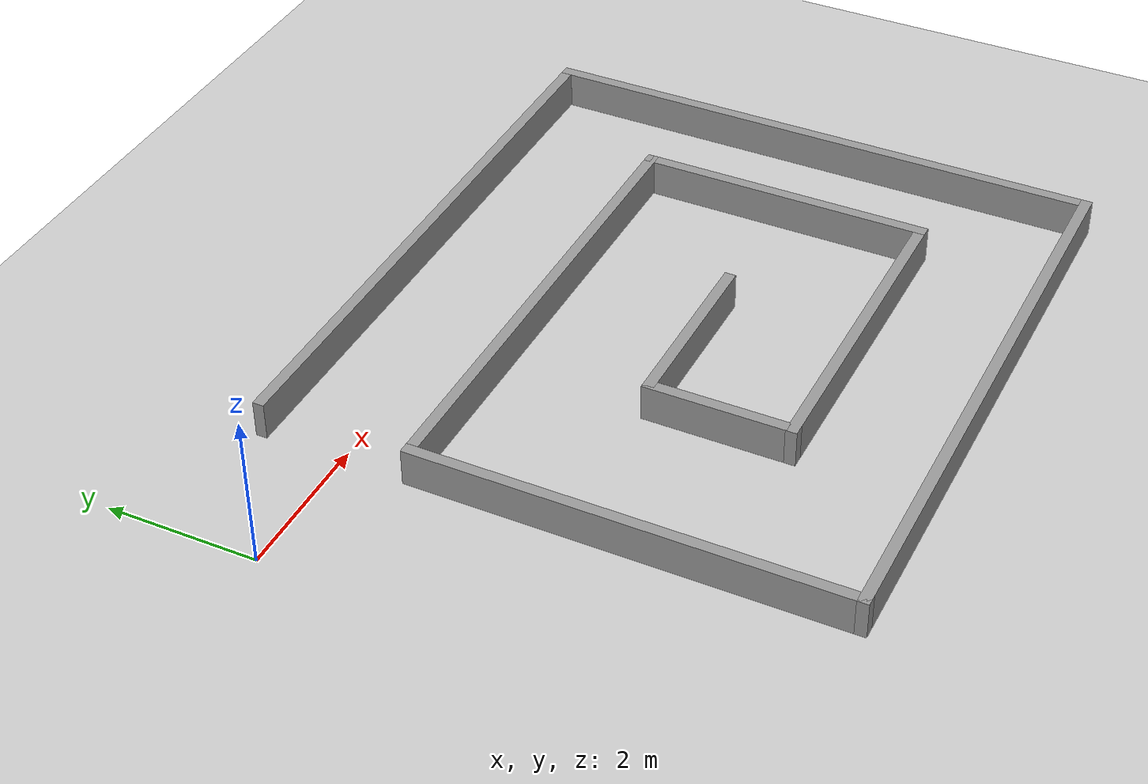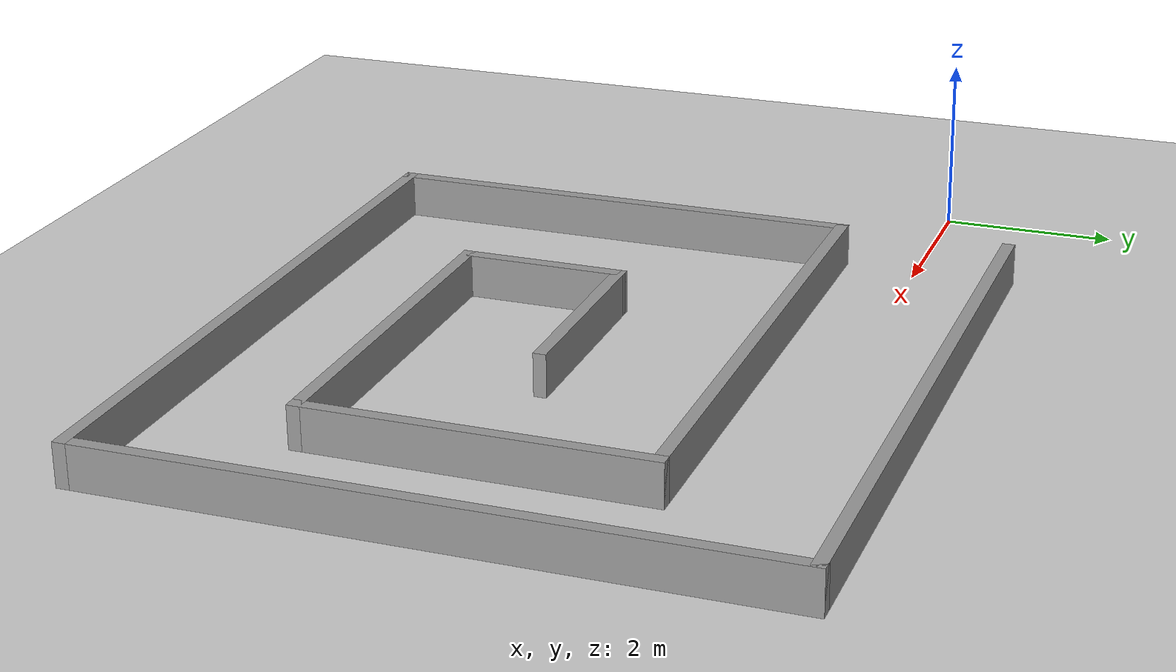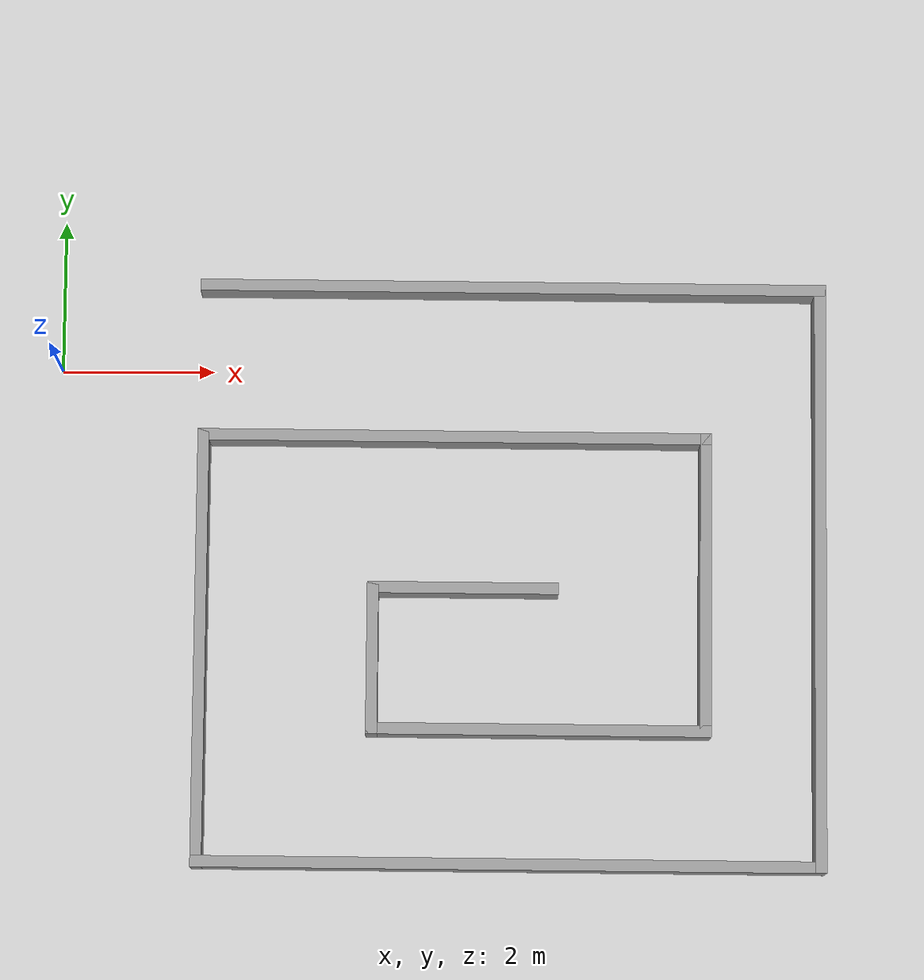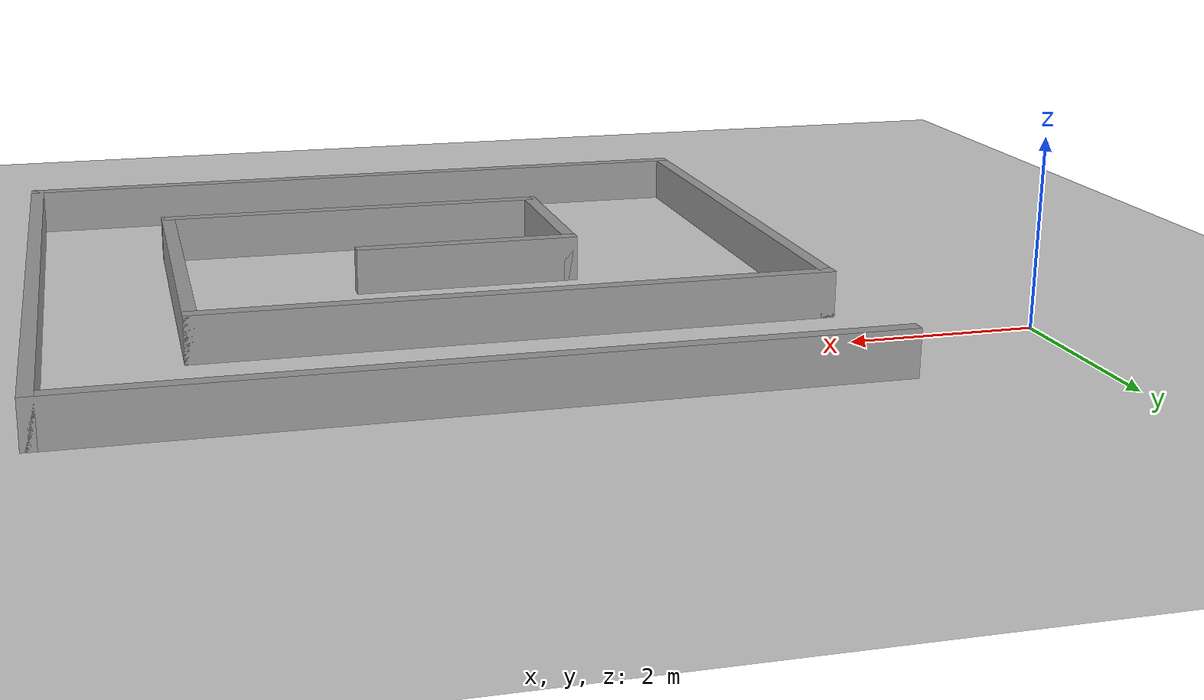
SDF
<sdf version="1.6">
 <world name="default">
  <light name="sun" type="directional">
   <pose>0 0 10 0 -0 0</pose>
   <diffuse>0.8 0.8 0.8 1</diffuse>
   <specular>0.2 0.2 0.2 1</specular>
   <attenuation>
    <range>1000</range>
    <constant>0.9</constant>
    <linear>0.01</linear>
    <quadratic>0.001</quadratic>
   </attenuation>
   <direction>-0.5 0.1 -0.9</direction>
  </light>
  <model name="ground_plane">
   <static>1</static>
   <link name="link">
    <collision name="collision">
     <geometry><plane><normal>0 0 1</normal><size>100 100</size></plane></geometry>
     <surface>
      <contact><collide_bitmask>65535</collide_bitmask></contact>
      <friction><ode><mu>100</mu><mu2>50</mu2></ode></friction>
     </surface>
    </collision>
    <visual name="visual">
     <cast_shadows>0</cast_shadows>
     <geometry><plane><normal>0 0 1</normal><size>100 100</size></plane></geometry>
     <material>
      <script><uri>file://media/materials/scripts/gazebo.material</uri><name>Gazebo/Grey</name></script>
     </material>
    </visual>
   </link>
  </model>
  <gravity>0 0 -9.8</gravity>
  <magnetic_field>6e-06 2.3e-05 -4.2e-05</magnetic_field>
  <atmosphere type="adiabatic"/>
  <physics name="default_physics" default="0" type="ode">
   <max_step_size>0.001</max_step_size>
   <real_time_factor>1</real_time_factor>
   <real_time_update_rate>1000</real_time_update_rate>
  </physics>
  <scene><ambient>0.4 0.4 0.4 1</ambient><background>0.7 0.7 0.7 1</background><shadows>1</shadows></scene>
  <audio><device>default</device></audio>
  <spherical_coordinates>
   <surface_model>EARTH_WGS84</surface_model>
   <latitude_deg>0</latitude_deg>
   <longitude_deg>0</longitude_deg>
   <elevation>0</elevation>
   <heading_deg>0</heading_deg>
  </spherical_coordinates>
  <model name="MapSpiral">
   <pose>5.93816 -2.71968 0 0 -0 3.13829</pose>
   <link name="Wall_10">
    <collision name="Wall_10_Collision">
     <geometry><box><size>8.25 0.15 0.5</size></box></geometry>
     <pose>0 0 0.25 0 -0 0</pose>
    </collision>
    <visual name="Wall_10_Visual">
     <pose>0 0 0.25 0 -0 0</pose>
     <geometry><box><size>8.25 0.15 0.5</size></box></geometry>
     <material>
      <script><uri>file://media/materials/scripts/gazebo.material</uri><name>Gazebo/Grey</name></script>
      <ambient>1 1 1 1</ambient>
     </material>
    </visual>
    <pose>0 3.8 0 0 -0 3.14159</pose>
   </link>
   <link name="Wall_11">
    <collision name="Wall_11_Collision">
     <geometry><box><size>7.75 0.15 0.5</size></box></geometry>
     <pose>0 0 0.25 0 -0 0</pose>
    </collision>
    <visual name="Wall_11_Visual">
     <pose>0 0 0.25 0 -0 0</pose>
     <geometry><box><size>7.75 0.15 0.5</size></box></geometry>
     <material>
      <script><uri>file://media/materials/scripts/gazebo.material</uri><name>Gazebo/Grey</name></script>
      <ambient>1 1 1 1</ambient>
     </material>
    </visual>
    <pose>-4.05 0 0 0 0 -1.5708</pose>
   </link>
   <link name="Wall_12">
    <collision name="Wall_12_Collision">
     <geometry><box><size>8.25 0.15 0.5</size></box></geometry>
     <pose>0 0 0.25 0 -0 0</pose>
    </collision>
    <visual name="Wall_12_Visual">
     <pose>0 0 0.25 0 -0 0</pose>
     <geometry><box><size>8.25 0.15 0.5</size></box></geometry>
     <material>
      <script><uri>file://media/materials/scripts/gazebo.material</uri><name>Gazebo/Grey</name></script>
      <ambient>1 1 1 1</ambient>
     </material>
    </visual>
    <pose>0 -3.8 0 0 -0 0</pose>
   </link>
   <link name="Wall_4">
    <collision name="Wall_4_Collision">
     <geometry><box><size>2.5 0.15 0.5</size></box></geometry>
     <pose>0 0 0.25 0 -0 0</pose>
    </collision>
    <visual name="Wall_4_Visual">
     <pose>0 0 0.25 0 -0 0</pose>
     <geometry><box><size>2.5 0.15 0.5</size></box></geometry>
     <material>
      <script><uri>file://media/materials/scripts/gazebo.material</uri><name>Gazebo/Grey</name></script>
      <ambient>1 1 1 1</ambient>
     </material>
    </visual>
    <pose>0.625 0.2 0 0 -0 0</pose>
   </link>
   <link name="Wall_5">
    <collision name="Wall_5_Collision">
     <geometry><box><size>2 0.15 0.5</size></box></geometry>
     <pose>0 0 0.25 0 -0 0</pose>
    </collision>
    <visual name="Wall_5_Visual">
     <pose>0 0 0.25 0 -0 0</pose>
     <geometry><box><size>2 0.15 0.5</size></box></geometry>
     <material>
      <script><uri>file://media/materials/scripts/gazebo.material</uri><name>Gazebo/Grey</name></script>
      <ambient>1 1 1 1</ambient>
     </material>
    </visual>
    <pose>1.8 1.125 0 0 -0 1.5708</pose>
   </link>
   <link name="Wall_6">
    <collision name="Wall_6_Collision">
     <geometry><box><size>4.5 0.15 0.5</size></box></geometry>
     <pose>0 0 0.25 0 -0 0</pose>
    </collision>
    <visual name="Wall_6_Visual">
     <pose>0 0 0.25 0 -0 0</pose>
     <geometry><box><size>4.5 0.15 0.5</size></box></geometry>
     <material>
      <script><uri>file://media/materials/scripts/gazebo.material</uri><name>Gazebo/Grey</name></script>
      <ambient>1 1 1 1</ambient>
     </material>
    </visual>
    <pose>-0.375 2.05 0 0 -0 3.14159</pose>
   </link>
   <link name="Wall_7">
    <collision name="Wall_7_Collision">
     <geometry><box><size>4 0.15 0.5</size></box></geometry>
     <pose>0 0 0.25 0 -0 0</pose>
    </collision>
    <visual name="Wall_7_Visual">
     <pose>0 0 0.25 0 -0 0</pose>
     <geometry><box><size>4 0.15 0.5</size></box></geometry>
     <material>
      <script><uri>file://media/materials/scripts/gazebo.material</uri><name>Gazebo/Grey</name></script>
      <ambient>1 1 1 1</ambient>
     </material>
    </visual>
    <pose>-2.55 0.125 0 0 0 -1.5708</pose>
   </link>
   <link name="Wall_8">
    <collision name="Wall_8_Collision">
     <geometry><box><size>6.75 0.15 0.5</size></box></geometry>
     <pose>0 0 0.25 0 -0 0</pose>
    </collision>
    <visual name="Wall_8_Visual">
     <pose>0 0 0.25 0 -0 0</pose>
     <geometry><box><size>6.75 0.15 0.5</size></box></geometry>
     <material>
      <script><uri>file://media/materials/scripts/gazebo.material</uri><name>Gazebo/Grey</name></script>
      <ambient>1 1 1 1</ambient>
     </material>
    </visual>
    <pose>0.75 -1.8 0 0 -0 0</pose>
   </link>
   <link name="Wall_9">
    <collision name="Wall_9_Collision">
     <geometry><box><size>5.75 0.15 0.5</size></box></geometry>
     <pose>0 0 0.25 0 -0 0</pose>
    </collision>
    <visual name="Wall_9_Visual">
     <pose>0 0 0.25 0 -0 0</pose>
     <geometry><box><size>5.75 0.15 0.5</size></box></geometry>
     <material>
      <script><uri>file://media/materials/scripts/gazebo.material</uri><name>Gazebo/Grey</name></script>
      <ambient>1 1 1 1</ambient>
     </material>
    </visual>
    <pose>4.05 1 0 0 -0 1.5708</pose>
   </link>
   <static>1</static>
  </model>
 </world>
</sdf>
